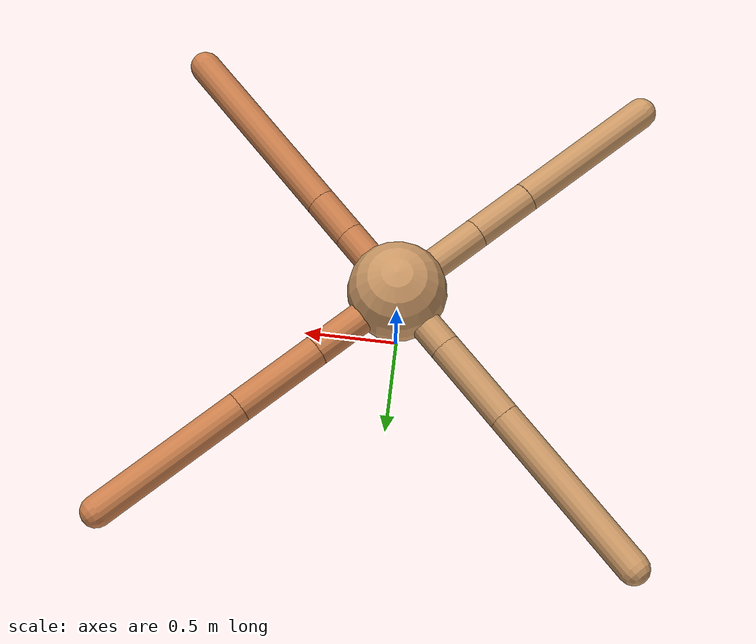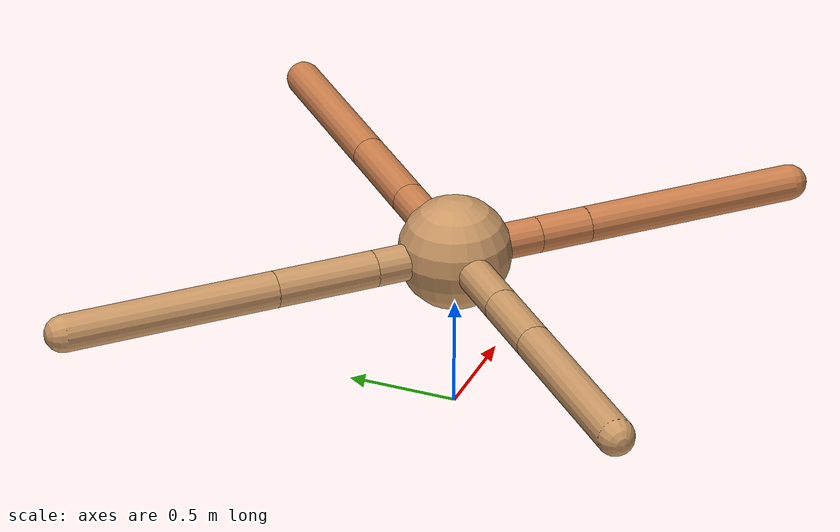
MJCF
<mujoco model="ant">
  <compiler angle="degree" coordinate="local" inertiafromgeom="true" />
  <option integrator="RK4" timestep="0.01" />
  <custom>
    <numeric data="0.0 0.0 0.55 1.0 0.0 0.0 0.0 0.0 1.0 0.0 -1.0 0.0 -1.0 0.0 1.0" name="init_qpos" />
  </custom>
  <default>
    <joint armature="1" damping="1" limited="true" />
    <geom conaffinity="0" condim="3" density="5.0" friction="1.5 0.1 0.1" margin="0.01" rgba="0.8 0.6 0.4 1" />
  </default>
  <worldbody>
    <body name="torso" pos="0 0 0.75">
      <geom name="torso_geom" pos="0 0 0" size="0.25" type="sphere" />

      <body name="front_left_leg" pos="0 0 0">
        <geom fromto="0.0 0.0 0.0 0.3569469617193006 0.3569469617193006 0.0" name="aux_1_geom" size="0.08" type="capsule" rgba=".8 .5 .3 1" />
        <body name="aux_1" pos="0.3569469617193006 0.3569469617193006 0.0">
          <joint axis="0 0 1" name="hip_1" pos="0.0 0.0 0.0" range="-40 40" type="hinge" />
          <geom fromto="0.0 0.0 0.0 0.3323705073417465 0.3323705073417465 0.0" name="left_leg_geom" size="0.08" type="capsule" rgba=".8 .5 .3 1" />
          <body pos="0.3323705073417465 0.3323705073417465 0.0" name="front_left_foot">
            <joint axis="-1 1 0" name="ankle_1" pos="0.0 0.0 0.0" range="30 100" type="hinge" />
            <geom fromto="0.0 0.0 0.0 0.5869004390419252 0.5869004390419252 0.0" name="left_ankle_geom" size="0.08" type="capsule" rgba=".8 .5 .3 1" />
          </body>
        </body>
      </body>
      <body name="front_right_leg" pos="0 0 0">
        <geom fromto="0.0 0.0 0.0 -0.26625429701344 0.26625429701344 0.0" name="aux_2_geom" size="0.08" type="capsule" />
        <body name="aux_2" pos="-0.26625429701344 0.26625429701344 0.0">
          <joint axis="0 0 1" name="hip_2" pos="0.0 0.0 0.0" range="-40 40" type="hinge" />
          <geom fromto="0.0 0.0 0.0 -0.3203325347512527 0.3203325347512527 0.0" name="right_leg_geom" size="0.08" type="capsule" />
          <body pos="-0.3203325347512527 0.3203325347512527 0.0" name="front_right_foot">
            <joint axis="1 1 0" name="ankle_2" pos="0.0 0.0 0.0" range="-100 -30" type="hinge" />
            <geom fromto="0.0 0.0 0.0 -0.6627842860050339 0.6627842860050339 0.0" name="right_ankle_geom" size="0.08" type="capsule" />
          </body>
        </body>
      </body>
      <body name="left_back_leg" pos="0 0 0">
        <geom fromto="0.0 0.0 0.0 -0.35848320879280704 -0.35848320879280704 0.0" name="aux_3_geom" size="0.08" type="capsule" />
        <body name="aux_3" pos="-0.35848320879280704 -0.35848320879280704 0.0">
          <joint axis="0 0 1" name="hip_3" pos="0.0 0.0 0.0" range="-40 40" type="hinge" />
          <geom fromto="0.0 0.0 0.0 -0.2309614375140656 -0.2309614375140656 0.0" name="back_leg_geom" size="0.08" type="capsule" />
          <body pos="-0.2309614375140656 -0.2309614375140656 0.0" name="left_back_foot">
            <joint axis="-1 1 0" name="ankle_3" pos="0.0 0.0 0.0" range="-100 -30" type="hinge" />
            <geom fromto="0.0 0.0 0.0 -0.5514803315017937 -0.5514803315017937 0.0" name="third_ankle_geom" size="0.08" type="capsule" />
          </body>
        </body>
      </body>
      <body name="right_back_leg" pos="0 0 0">
        <geom fromto="0.0 0.0 0.0 0.2738573908291174 -0.2738573908291174 0.0" name="aux_4_geom" size="0.08" type="capsule" rgba=".8 .5 .3 1" />
        <body name="aux_4" pos="0.2738573908291174 -0.2738573908291174 0.0">
          <joint axis="0 0 1" name="hip_4" pos="0.0 0.0 0.0" range="-40 40" type="hinge" />
          <geom fromto="0.0 0.0 0.0 0.16656547524408918 -0.16656547524408918 0.0" name="rightback_leg_geom" size="0.08" type="capsule" rgba=".8 .5 .3 1" />
          <body pos="0.16656547524408918 -0.16656547524408918 0.0" name="right_back_foot">
            <joint axis="1 1 0" name="ankle_4" pos="0.0 0.0 0.0" range="30 100" type="hinge" />
            <geom fromto="0.0 0.0 0.0 0.7057321622111254 -0.7057321622111254 0.0" name="fourth_ankle_geom" size="0.08" type="capsule" rgba=".8 .5 .3 1" />
          </body>
        </body>
      </body>
    </body>
  </worldbody>
  <actuator>
    <motor ctrllimited="true" ctrlrange="-1.0 1.0" joint="hip_4" gear="150" />
    <motor ctrllimited="true" ctrlrange="-1.0 1.0" joint="ankle_4" gear="150" />
    <motor ctrllimited="true" ctrlrange="-1.0 1.0" joint="hip_1" gear="150" />
    <motor ctrllimited="true" ctrlrange="-1.0 1.0" joint="ankle_1" gear="150" />
    <motor ctrllimited="true" ctrlrange="-1.0 1.0" joint="hip_2" gear="150" />
    <motor ctrllimited="true" ctrlrange="-1.0 1.0" joint="ankle_2" gear="150" />
    <motor ctrllimited="true" ctrlrange="-1.0 1.0" joint="hip_3" gear="150" />
    <motor ctrllimited="true" ctrlrange="-1.0 1.0" joint="ankle_3" gear="150" />
  </actuator>
</mujoco>
